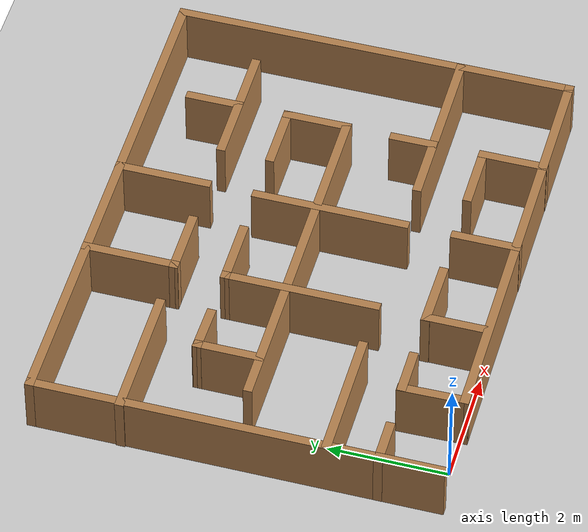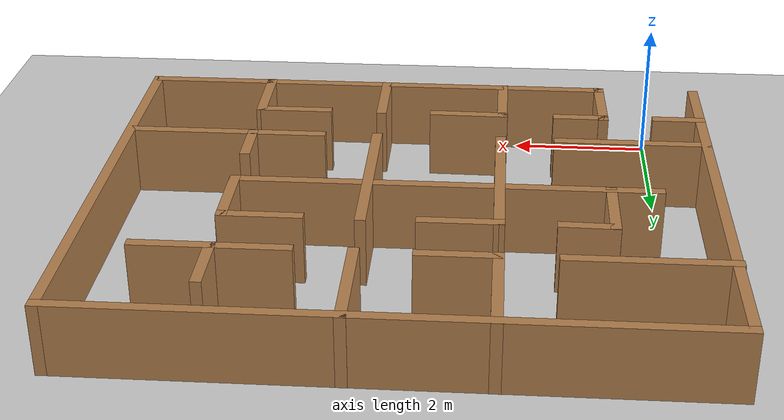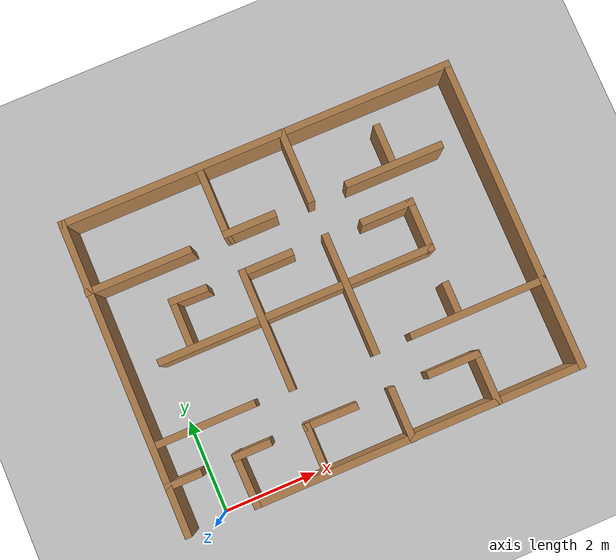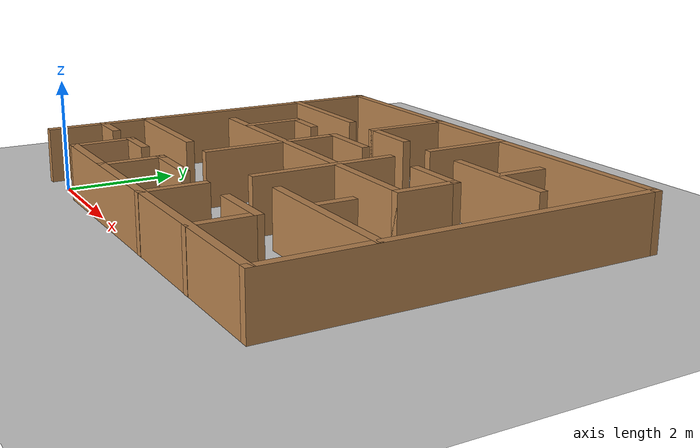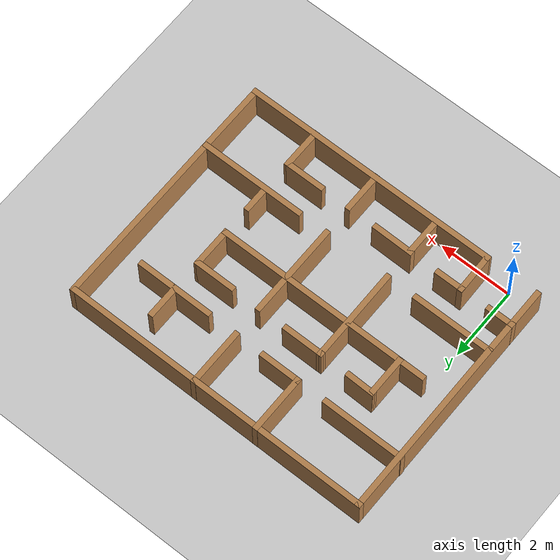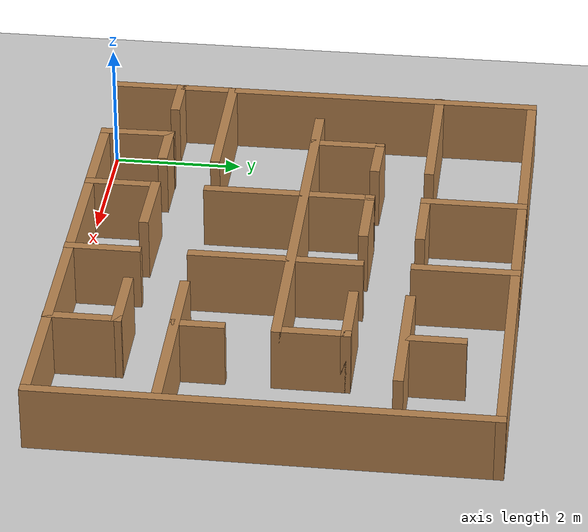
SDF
<sdf version='1.4'>
  <world name='default'>
    <include>
      <uri>model://ground_plane</uri>
    </include>
    <light name='sun' type='directional'>
      <cast_shadows>1</cast_shadows>
      <pose>0 0 10 0 -0 0</pose>
      <diffuse>0.8 0.8 0.8 1</diffuse>
      <specular>0.2 0.2 0.2 1</specular>
      <attenuation>
        <range>1000</range>
        <constant>0.9</constant>
        <linear>0.01</linear>
        <quadratic>0.001</quadratic>
      </attenuation>
      <direction>0.5 0.1 -0.9</direction>
    </light>
    <scene>
      <ambient>0.4 0.4 0.4 1</ambient>
      <background>0.7 0.7 0.7 1</background>
      <shadows>1</shadows>
    </scene>
    <physics type='ode'>
      <max_step_size>0.01</max_step_size>
      <real_time_factor>1</real_time_factor>
      <real_time_update_rate>100</real_time_update_rate>
      <gravity>0 0 -9.8</gravity>
    </physics>

    <include>
      <uri>model://meu_mundo</uri>
      <pose>3.5 3.3 0 0 0 0</pose>
    </include>
  </world>
</sdf>

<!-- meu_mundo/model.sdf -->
<sdf version='1.6'>
  <model name='map_1'>
    <model name='map_1'>
      <pose frame=''>-4e-06 4e-06 0 0 -0 0</pose>
      <link name='Wall_0'>
        <collision name='Wall_0_Collision'>
          <geometry>
            <box>
              <size>7.15128 0.15 1</size>
            </box>
          </geometry>
          <pose frame=''>0 0 0.5 0 -0 0</pose>
        </collision>
        <visual name='Wall_0_Visual'>
          <pose frame=''>0 0 0.5 0 -0 0</pose>
          <geometry>
            <box>
              <size>7.15128 0.15 1</size>
            </box>
          </geometry>
          <material>
            <script>
              <uri>file://media/materials/scripts/gazebo.material</uri>
              <name>Gazebo/Wood</name>
            </script>
            <ambient>1 1 1 1</ambient>
          </material>
          <meta>
            <layer>0</layer>
          </meta>
        </visual>
        <pose frame=''>0.742941 -3.33859 0 0 -0 0</pose>
      </link>
      <link name='Wall_10'>
        <collision name='Wall_10_Collision'>
          <geometry>
            <box>
              <size>0.79 0.15 1</size>
            </box>
          </geometry>
          <pose frame=''>0 0 0.5 0 -0 0</pose>
        </collision>
        <visual name='Wall_10_Visual'>
          <pose frame=''>0 0 0.5 0 -0 0</pose>
          <geometry>
            <box>
              <size>0.79 0.15 1</size>
            </box>
          </geometry>
          <material>
            <script>
              <uri>file://media/materials/scripts/gazebo.material</uri>
              <name>Gazebo/Wood</name>
            </script>
            <ambient>1 1 1 1</ambient>
          </material>
          <meta>
            <layer>0</layer>
          </meta>
        </visual>
        <pose frame=''>-3.9077 -2.33456 0 0 -0 0</pose>
      </link>
      <link name='Wall_12'>
        <collision name='Wall_12_Collision'>
          <geometry>
            <box>
              <size>1.17469 0.15 1</size>
            </box>
          </geometry>
          <pose frame=''>0 0 0.5 0 -0 0</pose>
        </collision>
        <visual name='Wall_12_Visual'>
          <pose frame=''>0 0 0.5 0 -0 0</pose>
          <geometry>
            <box>
              <size>1.17469 0.15 1</size>
            </box>
          </geometry>
          <material>
            <script>
              <uri>file://media/materials/scripts/gazebo.material</uri>
              <name>Gazebo/Wood</name>
            </script>
            <ambient>1 1 1 1</ambient>
          </material>
          <meta>
            <layer>0</layer>
          </meta>
        </visual>
        <pose frame=''>-2.76745 -2.82634 0 0 -0 1.58983</pose>
      </link>
      <link name='Wall_14'>
        <collision name='Wall_14_Collision'>
          <geometry>
            <box>
              <size>0.82 0.15 1</size>
            </box>
          </geometry>
          <pose frame=''>0 0 0.5 0 -0 0</pose>
        </collision>
        <visual name='Wall_14_Visual'>
          <pose frame=''>0 0 0.5 0 -0 0</pose>
          <geometry>
            <box>
              <size>0.82 0.15 1</size>
            </box>
          </geometry>
          <material>
            <script>
              <uri>file://media/materials/scripts/gazebo.material</uri>
              <name>Gazebo/Wood</name>
            </script>
            <ambient>1 1 1 1</ambient>
          </material>
          <meta>
            <layer>0</layer>
          </meta>
        </visual>
        <pose frame=''>-2.4357 -2.32059 0 0 -0 0</pose>
      </link>
      <link name='Wall_16'>
        <collision name='Wall_16_Collision'>
          <geometry>
            <box>
              <size>1.162 0.15 1</size>
            </box>
          </geometry>
          <pose frame=''>0 0 0.5 0 -0 0</pose>
        </collision>
        <visual name='Wall_16_Visual'>
          <pose frame=''>0 0 0.5 0 -0 0</pose>
          <geometry>
            <box>
              <size>1.162 0.15 1</size>
            </box>
          </geometry>
          <material>
            <script>
              <uri>file://media/materials/scripts/gazebo.material</uri>
              <name>Gazebo/Wood</name>
            </script>
            <ambient>1 1 1 1</ambient>
          </material>
          <meta>
            <layer>0</layer>
          </meta>
        </visual>
        <pose frame=''>-1.25762 -2.83094 0 0 -0 1.5708</pose>
      </link>
      <link name='Wall_18'>
        <collision name='Wall_18_Collision'>
          <geometry>
            <box>
              <size>1.17308 0.15 1</size>
            </box>
          </geometry>
          <pose frame=''>0 0 0.5 0 -0 0</pose>
        </collision>
        <visual name='Wall_18_Visual'>
          <pose frame=''>0 0 0.5 0 -0 0</pose>
          <geometry>
            <box>
              <size>1.17308 0.15 1</size>
            </box>
          </geometry>
          <material>
            <script>
              <uri>file://media/materials/scripts/gazebo.material</uri>
              <name>Gazebo/Wood</name>
            </script>
            <ambient>1 1 1 1</ambient>
          </material>
          <meta>
            <layer>0</layer>
          </meta>
        </visual>
        <pose frame=''>-0.752624 -2.32494 0 0 -0 -0.012709</pose>
      </link>
      <link name='Wall_2'>
        <collision name='Wall_2_Collision'>
          <geometry>
            <box>
              <size>6.83 0.15 1</size>
            </box>
          </geometry>
          <pose frame=''>0 0 0.5 0 -0 0</pose>
        </collision>
        <visual name='Wall_2_Visual'>
          <pose frame=''>0 0 0.5 0 -0 0</pose>
          <geometry>
            <box>
              <size>6.83 0.15 1</size>
            </box>
          </geometry>
          <material>
            <script>
              <uri>file://media/materials/scripts/gazebo.material</uri>
              <name>Gazebo/Wood</name>
            </script>
            <ambient>1 1 1 1</ambient>
          </material>
          <meta>
            <layer>0</layer>
          </meta>
        </visual>
        <pose frame=''>4.24358 0.001408 0 0 -0 1.5708</pose>
      </link>
      <link name='Wall_20'>
        <collision name='Wall_20_Collision'>
          <geometry>
            <box>
              <size>1.162 0.15 1</size>
            </box>
          </geometry>
          <pose frame=''>0 0 0.5 0 -0 0</pose>
        </collision>
        <visual name='Wall_20_Visual'>
          <pose frame=''>0 0 0.5 0 -0 0</pose>
          <geometry>
            <box>
              <size>1.162 0.15 1</size>
            </box>
          </geometry>
          <material>
            <script>
              <uri>file://media/materials/scripts/gazebo.material</uri>
              <name>Gazebo/Wood</name>
            </script>
            <ambient>1 1 1 1</ambient>
          </material>
          <meta>
            <layer>0</layer>
          </meta>
        </visual>
        <pose frame=''>0.575336 -2.83765 0 0 -0 1.5708</pose>
      </link>
      <link name='Wall_22'>
        <collision name='Wall_22_Collision'>
          <geometry>
            <box>
              <size>1.16821 0.15 1</size>
            </box>
          </geometry>
          <pose frame=''>0 0 0.5 0 -0 0</pose>
        </collision>
        <visual name='Wall_22_Visual'>
          <pose frame=''>0 0 0.5 0 -0 0</pose>
          <geometry>
            <box>
              <size>1.16821 0.15 1</size>
            </box>
          </geometry>
          <material>
            <script>
              <uri>file://media/materials/scripts/gazebo.material</uri>
              <name>Gazebo/Wood</name>
            </script>
            <ambient>1 1 1 1</ambient>
          </material>
          <meta>
            <layer>0</layer>
          </meta>
        </visual>
        <pose frame=''>2.41501 -2.83455 0 0 -0 1.57107</pose>
      </link>
      <link name='Wall_24'>
        <collision name='Wall_24_Collision'>
          <geometry>
            <box>
              <size>1.15 0.15 1</size>
            </box>
          </geometry>
          <pose frame=''>0 0 0.5 0 -0 0</pose>
        </collision>
        <visual name='Wall_24_Visual'>
          <pose frame=''>0 0 0.5 0 -0 0</pose>
          <geometry>
            <box>
              <size>1.15 0.15 1</size>
            </box>
          </geometry>
          <material>
            <script>
              <uri>file://media/materials/scripts/gazebo.material</uri>
              <name>Gazebo/Wood</name>
            </script>
            <ambient>1 1 1 1</ambient>
          </material>
          <meta>
            <layer>0</layer>
          </meta>
        </visual>
        <pose frame=''>1.91488 -2.32544 0 0 -0 3.14159</pose>
      </link>
      <link name='Wall_26'>
        <collision name='Wall_26_Collision'>
          <geometry>
            <box>
              <size>2.97 0.15 1</size>
            </box>
          </geometry>
          <pose frame=''>0 0 0.5 0 -0 0</pose>
        </collision>
        <visual name='Wall_26_Visual'>
          <pose frame=''>0 0 0.5 0 -0 0</pose>
          <geometry>
            <box>
              <size>2.97 0.15 1</size>
            </box>
          </geometry>
          <material>
            <script>
              <uri>file://media/materials/scripts/gazebo.material</uri>
              <name>Gazebo/Wood</name>
            </script>
            <ambient>1 1 1 1</ambient>
          </material>
          <meta>
            <layer>0</layer>
          </meta>
        </visual>
        <pose frame=''>2.82182 -1.48144 0 0 -0 3.14159</pose>
      </link>
      <link name='Wall_28'>
        <collision name='Wall_28_Collision'>
          <geometry>
            <box>
              <size>0.8 0.15 1</size>
            </box>
          </geometry>
          <pose frame=''>0 0 0.5 0 -0 0</pose>
        </collision>
        <visual name='Wall_28_Visual'>
          <pose frame=''>0 0 0.5 0 -0 0</pose>
          <geometry>
            <box>
              <size>0.8 0.15 1</size>
            </box>
          </geometry>
          <material>
            <script>
              <uri>file://media/materials/scripts/gazebo.material</uri>
              <name>Gazebo/Wood</name>
            </script>
            <ambient>1 1 1 1</ambient>
          </material>
          <meta>
            <layer>0</layer>
          </meta>
        </visual>
        <pose frame=''>2.41393 -1.14636 0 0 -0 1.5708</pose>
      </link>
      <link name='Wall_30'>
        <collision name='Wall_30_Collision'>
          <geometry>
            <box>
              <size>2.15 0.15 1</size>
            </box>
          </geometry>
          <pose frame=''>0 0 0.5 0 -0 0</pose>
        </collision>
        <visual name='Wall_30_Visual'>
          <pose frame=''>0 0 0.5 0 -0 0</pose>
          <geometry>
            <box>
              <size>2.15 0.15 1</size>
            </box>
          </geometry>
          <material>
            <script>
              <uri>file://media/materials/scripts/gazebo.material</uri>
              <name>Gazebo/Wood</name>
            </script>
            <ambient>1 1 1 1</ambient>
          </material>
          <meta>
            <layer>0</layer>
          </meta>
        </visual>
        <pose frame=''>2.42469 1.84882 0 0 -0 0</pose>
      </link>
      <link name='Wall_32'>
        <collision name='Wall_32_Collision'>
          <geometry>
            <box>
              <size>0.965 0.15 1</size>
            </box>
          </geometry>
          <pose frame=''>0 0 0.5 0 -0 0</pose>
        </collision>
        <visual name='Wall_32_Visual'>
          <pose frame=''>0 0 0.5 0 -0 0</pose>
          <geometry>
            <box>
              <size>0.965 0.15 1</size>
            </box>
          </geometry>
          <material>
            <script>
              <uri>file://media/materials/scripts/gazebo.material</uri>
              <name>Gazebo/Wood</name>
            </script>
            <ambient>1 1 1 1</ambient>
          </material>
          <meta>
            <layer>0</layer>
          </meta>
        </visual>
        <pose frame=''>2.41961 2.2677 0 0 -0 1.5708</pose>
      </link>
      <link name='Wall_36'>
        <collision name='Wall_36_Collision'>
          <geometry>
            <box>
              <size>1.63 0.15 1</size>
            </box>
          </geometry>
          <pose frame=''>0 0 0.5 0 -0 0</pose>
        </collision>
        <visual name='Wall_36_Visual'>
          <pose frame=''>0 0 0.5 0 -0 0</pose>
          <geometry>
            <box>
              <size>1.63 0.15 1</size>
            </box>
          </geometry>
          <material>
            <script>
              <uri>file://media/materials/scripts/gazebo.material</uri>
              <name>Gazebo/Wood</name>
            </script>
            <ambient>1 1 1 1</ambient>
          </material>
          <meta>
            <layer>0</layer>
          </meta>
        </visual>
        <pose frame=''>0.581488 2.60367 0 0 -0 -1.5708</pose>
      </link>
      <link name='Wall_38'>
        <collision name='Wall_38_Collision'>
          <geometry>
            <box>
              <size>1.63 0.15 1</size>
            </box>
          </geometry>
          <pose frame=''>0 0 0.5 0 -0 0</pose>
        </collision>
        <visual name='Wall_38_Visual'>
          <pose frame=''>0 0 0.5 0 -0 0</pose>
          <geometry>
            <box>
              <size>1.63 0.15 1</size>
            </box>
          </geometry>
          <material>
            <script>
              <uri>file://media/materials/scripts/gazebo.material</uri>
              <name>Gazebo/Wood</name>
            </script>
            <ambient>1 1 1 1</ambient>
          </material>
          <meta>
            <layer>0</layer>
          </meta>
        </visual>
        <pose frame=''>-1.25352 2.60367 0 0 -0 -1.5708</pose>
      </link>
      <link name='Wall_40'>
        <collision name='Wall_40_Collision'>
          <geometry>
            <box>
              <size>1.16 0.15 1</size>
            </box>
          </geometry>
          <pose frame=''>0 0 0.5 0 -0 0</pose>
        </collision>
        <visual name='Wall_40_Visual'>
          <pose frame=''>0 0 0.5 0 -0 0</pose>
          <geometry>
            <box>
              <size>1.16 0.15 1</size>
            </box>
          </geometry>
          <material>
            <script>
              <uri>file://media/materials/scripts/gazebo.material</uri>
              <name>Gazebo/Wood</name>
            </script>
            <ambient>1 1 1 1</ambient>
          </material>
          <meta>
            <layer>0</layer>
          </meta>
        </visual>
        <pose frame=''>-0.748521 1.86367 0 0 -0 0</pose>
      </link>
      <link name='Wall_42'>
        <collision name='Wall_42_Collision'>
          <geometry>
            <box>
              <size>2.3 0.15 1</size>
            </box>
          </geometry>
          <pose frame=''>0 0 0.5 0 -0 0</pose>
        </collision>
        <visual name='Wall_42_Visual'>
          <pose frame=''>0 0 0.5 0 -0 0</pose>
          <geometry>
            <box>
              <size>2.3 0.15 1</size>
            </box>
          </geometry>
          <material>
            <script>
              <uri>file://media/materials/scripts/gazebo.material</uri>
              <name>Gazebo/Wood</name>
            </script>
            <ambient>1 1 1 1</ambient>
          </material>
          <meta>
            <layer>0</layer>
          </meta>
        </visual>
        <pose frame=''>-3.16858 1.85736 0 0 -0 0</pose>
      </link>
      <link name='Wall_44'>
        <collision name='Wall_44_Collision'>
          <geometry>
            <box>
              <size>2.28 0.15 1</size>
            </box>
          </geometry>
          <pose frame=''>0 0 0.5 0 -0 0</pose>
        </collision>
        <visual name='Wall_44_Visual'>
          <pose frame=''>0 0 0.5 0 -0 0</pose>
          <geometry>
            <box>
              <size>2.28 0.15 1</size>
            </box>
          </geometry>
          <material>
            <script>
              <uri>file://media/materials/scripts/gazebo.material</uri>
              <name>Gazebo/Wood</name>
            </script>
            <ambient>1 1 1 1</ambient>
          </material>
          <meta>
            <layer>0</layer>
          </meta>
        </visual>
        <pose frame=''>-3.15881 -1.49069 0 0 -0 0</pose>
      </link>
      <link name='Wall_46'>
        <collision name='Wall_46_Collision'>
          <geometry>
            <box>
              <size>6 0.15 1</size>
            </box>
          </geometry>
          <pose frame=''>0 0 0.5 0 -0 0</pose>
        </collision>
        <visual name='Wall_46_Visual'>
          <pose frame=''>0 0 0.5 0 -0 0</pose>
          <geometry>
            <box>
              <size>6 0.15 1</size>
            </box>
          </geometry>
          <material>
            <script>
              <uri>file://media/materials/scripts/gazebo.material</uri>
              <name>Gazebo/Wood</name>
            </script>
            <ambient>1 1 1 1</ambient>
          </material>
          <meta>
            <layer>0</layer>
          </meta>
        </visual>
        <pose frame=''>-0.501122 -0.001441 0 0 -0 0</pose>
      </link>
      <link name='Wall_48'>
        <collision name='Wall_48_Collision'>
          <geometry>
            <box>
              <size>2.64 0.15 1</size>
            </box>
          </geometry>
          <pose frame=''>0 0 0.5 0 -0 0</pose>
        </collision>
        <visual name='Wall_48_Visual'>
          <pose frame=''>0 0 0.5 0 -0 0</pose>
          <geometry>
            <box>
              <size>2.64 0.15 1</size>
            </box>
          </geometry>
          <material>
            <script>
              <uri>file://media/materials/scripts/gazebo.material</uri>
              <name>Gazebo/Wood</name>
            </script>
            <ambient>1 1 1 1</ambient>
          </material>
          <meta>
            <layer>0</layer>
          </meta>
        </visual>
        <pose frame=''>-1.24762 -0.237441 0 0 -0 -1.56798</pose>
      </link>
      <link name='Wall_50'>
        <collision name='Wall_50_Collision'>
          <geometry>
            <box>
              <size>1.17 0.15 1</size>
            </box>
          </geometry>
          <pose frame=''>0 0 0.5 0 -0 0</pose>
        </collision>
        <visual name='Wall_50_Visual'>
          <pose frame=''>0 0 0.5 0 -0 0</pose>
          <geometry>
            <box>
              <size>1.17 0.15 1</size>
            </box>
          </geometry>
          <material>
            <script>
              <uri>file://media/materials/scripts/gazebo.material</uri>
              <name>Gazebo/Wood</name>
            </script>
            <ambient>1 1 1 1</ambient>
          </material>
          <meta>
            <layer>0</layer>
          </meta>
        </visual>
        <pose frame=''>-0.741122 1.00756 0 0 -0 0</pose>
      </link>
      <link name='Wall_53'>
        <collision name='Wall_53_Collision'>
          <geometry>
            <box>
              <size>2.64 0.15 1</size>
            </box>
          </geometry>
          <pose frame=''>0 0 0.5 0 -0 0</pose>
        </collision>
        <visual name='Wall_53_Visual'>
          <pose frame=''>0 0 0.5 0 -0 0</pose>
          <geometry>
            <box>
              <size>2.64 0.15 1</size>
            </box>
          </geometry>
          <material>
            <script>
              <uri>file://media/materials/scripts/gazebo.material</uri>
              <name>Gazebo/Wood</name>
            </script>
            <ambient>1 1 1 1</ambient>
          </material>
          <meta>
            <layer>0</layer>
          </meta>
        </visual>
        <pose frame=''>0.574234 -0.233542 0 0 -0 -1.5708</pose>
      </link>
      <link name='Wall_55'>
        <collision name='Wall_55_Collision'>
          <geometry>
            <box>
              <size>1.16 0.15 1</size>
            </box>
          </geometry>
          <pose frame=''>0 0 0.5 0 -0 0</pose>
        </collision>
        <visual name='Wall_55_Visual'>
          <pose frame=''>0 0 0.5 0 -0 0</pose>
          <geometry>
            <box>
              <size>1.16 0.15 1</size>
            </box>
          </geometry>
          <material>
            <script>
              <uri>file://media/materials/scripts/gazebo.material</uri>
              <name>Gazebo/Wood</name>
            </script>
            <ambient>1 1 1 1</ambient>
          </material>
          <meta>
            <layer>0</layer>
          </meta>
        </visual>
        <pose frame=''>-2.76869 0.515855 0 0 -0 1.5708</pose>
      </link>
      <link name='Wall_57'>
        <collision name='Wall_57_Collision'>
          <geometry>
            <box>
              <size>0.83 0.15 1</size>
            </box>
          </geometry>
          <pose frame=''>0 0 0.5 0 -0 0</pose>
        </collision>
        <visual name='Wall_57_Visual'>
          <pose frame=''>0 0 0.5 0 -0 0</pose>
          <geometry>
            <box>
              <size>0.83 0.15 1</size>
            </box>
          </geometry>
          <material>
            <script>
              <uri>file://media/materials/scripts/gazebo.material</uri>
              <name>Gazebo/Wood</name>
            </script>
            <ambient>1 1 1 1</ambient>
          </material>
          <meta>
            <layer>0</layer>
          </meta>
        </visual>
        <pose frame=''>-2.42869 1.02085 0 0 -0 -0.022291</pose>
      </link>
      <link name='Wall_59'>
        <collision name='Wall_59_Collision'>
          <geometry>
            <box>
              <size>1.16 0.15 1</size>
            </box>
          </geometry>
          <pose frame=''>0 0 0.5 0 -0 0</pose>
        </collision>
        <visual name='Wall_59_Visual'>
          <pose frame=''>0 0 0.5 0 -0 0</pose>
          <geometry>
            <box>
              <size>1.16 0.15 1</size>
            </box>
          </geometry>
          <material>
            <script>
              <uri>file://media/materials/scripts/gazebo.material</uri>
              <name>Gazebo/Wood</name>
            </script>
            <ambient>1 1 1 1</ambient>
          </material>
          <meta>
            <layer>0</layer>
          </meta>
        </visual>
        <pose frame=''>2.42388 0.503559 0 0 -0 1.5708</pose>
      </link>
      <link name='Wall_6'>
        <collision name='Wall_6_Collision'>
          <geometry>
            <box>
              <size>8.62 0.15 1</size>
            </box>
          </geometry>
          <pose frame=''>0 0 0.5 0 -0 0</pose>
        </collision>
        <visual name='Wall_6_Visual'>
          <pose frame=''>0 0 0.5 0 -0 0</pose>
          <geometry>
            <box>
              <size>8.62 0.15 1</size>
            </box>
          </geometry>
          <material>
            <script>
              <uri>file://media/materials/scripts/gazebo.material</uri>
              <name>Gazebo/Wood</name>
            </script>
            <ambient>1 1 1 1</ambient>
          </material>
          <meta>
            <layer>0</layer>
          </meta>
        </visual>
        <pose frame=''>0.00858 3.34141 0 0 -0 3.14159</pose>
      </link>
      <link name='Wall_62'>
        <collision name='Wall_62_Collision'>
          <geometry>
            <box>
              <size>1.17 0.15 1</size>
            </box>
          </geometry>
          <pose frame=''>0 0 0.5 0 -0 0</pose>
        </collision>
        <visual name='Wall_62_Visual'>
          <pose frame=''>0 0 0.5 0 -0 0</pose>
          <geometry>
            <box>
              <size>1.17 0.15 1</size>
            </box>
          </geometry>
          <material>
            <script>
              <uri>file://media/materials/scripts/gazebo.material</uri>
              <name>Gazebo/Wood</name>
            </script>
            <ambient>1 1 1 1</ambient>
          </material>
          <meta>
            <layer>0</layer>
          </meta>
        </visual>
        <pose frame=''>1.91388 1.00856 0 0 -0 3.14159</pose>
      </link>
      <link name='Wall_8'>
        <collision name='Wall_8_Collision'>
          <geometry>
            <box>
              <size>6.82 0.15 1</size>
            </box>
          </geometry>
          <pose frame=''>0 0 0.5 0 -0 0</pose>
        </collision>
        <visual name='Wall_8_Visual'>
          <pose frame=''>0 0 0.5 0 -0 0</pose>
          <geometry>
            <box>
              <size>6.82 0.15 1</size>
            </box>
          </geometry>
          <material>
            <script>
              <uri>file://media/materials/scripts/gazebo.material</uri>
              <name>Gazebo/Wood</name>
            </script>
            <ambient>1 1 1 1</ambient>
          </material>
          <meta>
            <layer>0</layer>
          </meta>
        </visual>
        <pose frame=''>-4.22642 0.006408 0 0 -0 -1.5708</pose>
      </link>
      <static>1</static>
    </model>
    <static>0</static>
    <allow_auto_disable>1</allow_auto_disable>
  </model>
</sdf>
